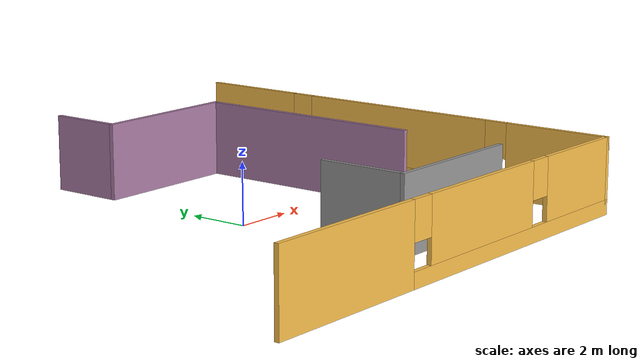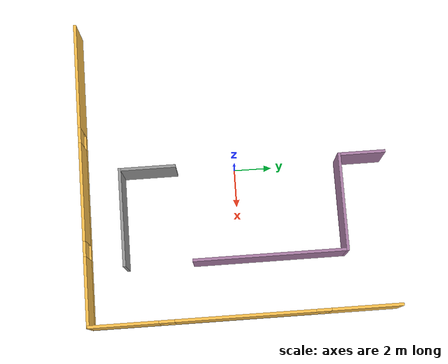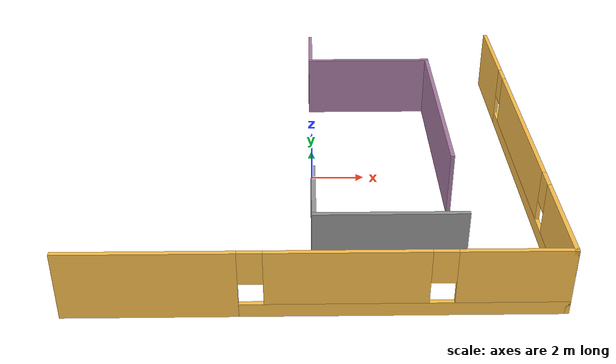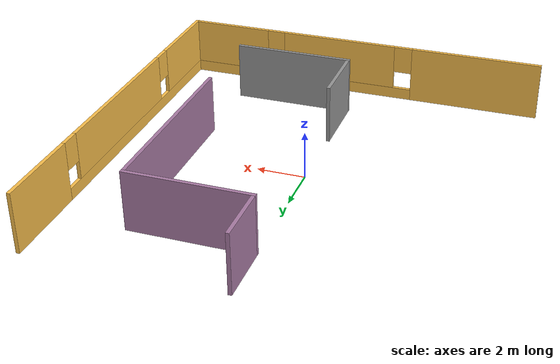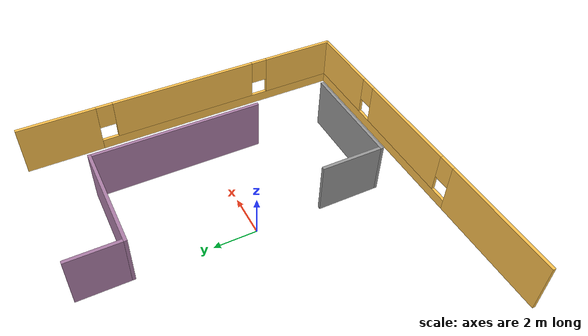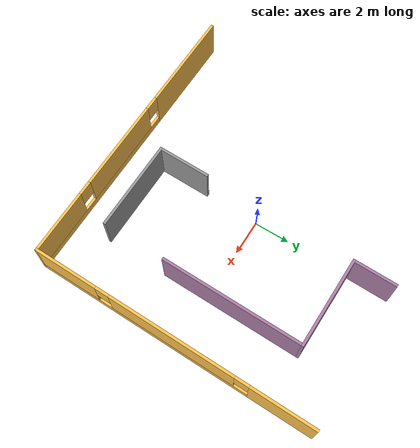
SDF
<sdf version="1.7">
 <model name="basic_office">
  <link name="Wall_11">
   <pose>8 0 0 0 0 -1.5708</pose>
   <visual name="Wall_11_Visual_3">
    <pose>6.2375 0 1.5 0 -0 0</pose>
    <geometry><box><size>3.675 0.15 2</size></box></geometry>
    <material>
     <script><uri>file://media/materials/scripts/gazebo.material</uri><name>Gazebo/Grey</name></script>
     <ambient>1 0.764706 0.305882 1</ambient>
     <shader type="pixel"/>
    </material>
    <meta><layer>0</layer></meta>
   </visual>
   <visual name="Wall_11_Visual_5">
    <pose>4 0 1.9 0 -0 0</pose>
    <geometry><box><size>0.8 0.15 1.2</size></box></geometry>
    <material>
     <script><uri>file://media/materials/scripts/gazebo.material</uri><name>Gazebo/Grey</name></script>
     <ambient>1 0.764706 0.305882 1</ambient>
     <shader type="pixel"/>
    </material>
    <meta><layer>0</layer></meta>
   </visual>
   <visual name="Wall_11_Visual_2">
    <pose>0 0 1.5 0 -0 0</pose>
    <geometry><box><size>7.2 0.15 2</size></box></geometry>
    <material>
     <script><uri>file://media/materials/scripts/gazebo.material</uri><name>Gazebo/Grey</name></script>
     <ambient>1 0.764706 0.305882 1</ambient>
     <shader type="pixel"/>
    </material>
    <meta><layer>0</layer></meta>
   </visual>
   <visual name="Wall_11_Visual_0">
    <pose>-6.2375 0 1.25 0 -0 0</pose>
    <geometry><box><size>3.675 0.15 2.5</size></box></geometry>
    <material>
     <script><uri>file://media/materials/scripts/gazebo.material</uri><name>Gazebo/Grey</name></script>
     <ambient>1 0.764706 0.305882 1</ambient>
     <shader type="pixel"/>
    </material>
    <meta><layer>0</layer></meta>
   </visual>
   <visual name="Wall_11_Visual_4">
    <pose>-4 0 1.9 0 -0 0</pose>
    <geometry><box><size>0.8 0.15 1.2</size></box></geometry>
    <material>
     <script><uri>file://media/materials/scripts/gazebo.material</uri><name>Gazebo/Grey</name></script>
     <ambient>1 0.764706 0.305882 1</ambient>
     <shader type="pixel"/>
    </material>
    <meta><layer>0</layer></meta>
   </visual>
   <visual name="Wall_11_Visual_1">
    <pose>1.8375 0 0.25 0 -0 0</pose>
    <geometry><box><size>12.475 0.15 0.5</size></box></geometry>
    <material>
     <script><uri>file://media/materials/scripts/gazebo.material</uri><name>Gazebo/Grey</name></script>
     <ambient>1 0.764706 0.305882 1</ambient>
     <shader type="pixel"/>
    </material>
    <meta><layer>0</layer></meta>
   </visual>
   <collision name="Wall_11_Collision_0">
    <pose>-6.2375 0 1.25 0 -0 0</pose>
    <geometry><box><size>3.675 0.15 2.5</size></box></geometry>
    <surface>
     <friction>
      <ode><mu>1</mu><mu2>1</mu2><fdir1>0 0 0</fdir1><slip1>0</slip1><slip2>0</slip2></ode>
      <torsional>
       <coefficient>1</coefficient>
       <patch_radius>0</patch_radius>
       <surface_radius>0</surface_radius>
       <use_patch_radius>1</use_patch_radius>
       <ode><slip>0</slip></ode>
      </torsional>
     </friction>
     <bounce><restitution_coefficient>0</restitution_coefficient><threshold>1e+06</threshold></bounce>
     <contact>
      <collide_without_contact>0</collide_without_contact>
      <collide_without_contact_bitmask>1</collide_without_contact_bitmask>
      <collide_bitmask>1</collide_bitmask>
      <ode>
       <soft_cfm>0</soft_cfm>
       <soft_erp>0.2</soft_erp>
       <kp>1e+13</kp>
       <kd>1</kd>
       <max_vel>0.01</max_vel>
       <min_depth>0</min_depth>
      </ode>
      <bullet>
       <split_impulse>1</split_impulse>
       <split_impulse_penetration_threshold>-0.01</split_impulse_penetration_threshold>
       <soft_cfm>0</soft_cfm>
       <soft_erp>0.2</soft_erp>
       <kp>1e+13</kp>
       <kd>1</kd>
      </bullet>
     </contact>
    </surface>
   </collision>
   <collision name="Wall_11_Collision_3">
    <pose>6.2375 0 1.5 0 -0 0</pose>
    <geometry><box><size>3.675 0.15 2</size></box></geometry>
    <surface>
     <friction>
      <ode><mu>1</mu><mu2>1</mu2><fdir1>0 0 0</fdir1><slip1>0</slip1><slip2>0</slip2></ode>
      <torsional>
       <coefficient>1</coefficient>
       <patch_radius>0</patch_radius>
       <surface_radius>0</surface_radius>
       <use_patch_radius>1</use_patch_radius>
       <ode><slip>0</slip></ode>
      </torsional>
     </friction>
     <bounce><restitution_coefficient>0</restitution_coefficient><threshold>1e+06</threshold></bounce>
     <contact>
      <collide_without_contact>0</collide_without_contact>
      <collide_without_contact_bitmask>1</collide_without_contact_bitmask>
      <collide_bitmask>1</collide_bitmask>
      <ode>
       <soft_cfm>0</soft_cfm>
       <soft_erp>0.2</soft_erp>
       <kp>1e+13</kp>
       <kd>1</kd>
       <max_vel>0.01</max_vel>
       <min_depth>0</min_depth>
      </ode>
      <bullet>
       <split_impulse>1</split_impulse>
       <split_impulse_penetration_threshold>-0.01</split_impulse_penetration_threshold>
       <soft_cfm>0</soft_cfm>
       <soft_erp>0.2</soft_erp>
       <kp>1e+13</kp>
       <kd>1</kd>
      </bullet>
     </contact>
    </surface>
   </collision>
   <collision name="Wall_11_Collision_5">
    <pose>4 0 1.9 0 -0 0</pose>
    <geometry><box><size>0.8 0.15 1.2</size></box></geometry>
    <surface>
     <friction>
      <ode><mu>1</mu><mu2>1</mu2><fdir1>0 0 0</fdir1><slip1>0</slip1><slip2>0</slip2></ode>
      <torsional>
       <coefficient>1</coefficient>
       <patch_radius>0</patch_radius>
       <surface_radius>0</surface_radius>
       <use_patch_radius>1</use_patch_radius>
       <ode><slip>0</slip></ode>
      </torsional>
     </friction>
     <bounce><restitution_coefficient>0</restitution_coefficient><threshold>1e+06</threshold></bounce>
     <contact>
      <collide_without_contact>0</collide_without_contact>
      <collide_without_contact_bitmask>1</collide_without_contact_bitmask>
      <collide_bitmask>1</collide_bitmask>
      <ode>
       <soft_cfm>0</soft_cfm>
       <soft_erp>0.2</soft_erp>
       <kp>1e+13</kp>
       <kd>1</kd>
       <max_vel>0.01</max_vel>
       <min_depth>0</min_depth>
      </ode>
      <bullet>
       <split_impulse>1</split_impulse>
       <split_impulse_penetration_threshold>-0.01</split_impulse_penetration_threshold>
       <soft_cfm>0</soft_cfm>
       <soft_erp>0.2</soft_erp>
       <kp>1e+13</kp>
       <kd>1</kd>
      </bullet>
     </contact>
    </surface>
   </collision>
   <collision name="Wall_11_Collision_1">
    <pose>1.8375 0 0.25 0 -0 0</pose>
    <geometry><box><size>12.475 0.15 0.5</size></box></geometry>
    <surface>
     <friction>
      <ode><mu>1</mu><mu2>1</mu2><fdir1>0 0 0</fdir1><slip1>0</slip1><slip2>0</slip2></ode>
      <torsional>
       <coefficient>1</coefficient>
       <patch_radius>0</patch_radius>
       <surface_radius>0</surface_radius>
       <use_patch_radius>1</use_patch_radius>
       <ode><slip>0</slip></ode>
      </torsional>
     </friction>
     <bounce><restitution_coefficient>0</restitution_coefficient><threshold>1e+06</threshold></bounce>
     <contact>
      <collide_without_contact>0</collide_without_contact>
      <collide_without_contact_bitmask>1</collide_without_contact_bitmask>
      <collide_bitmask>1</collide_bitmask>
      <ode>
       <soft_cfm>0</soft_cfm>
       <soft_erp>0.2</soft_erp>
       <kp>1e+13</kp>
       <kd>1</kd>
       <max_vel>0.01</max_vel>
       <min_depth>0</min_depth>
      </ode>
      <bullet>
       <split_impulse>1</split_impulse>
       <split_impulse_penetration_threshold>-0.01</split_impulse_penetration_threshold>
       <soft_cfm>0</soft_cfm>
       <soft_erp>0.2</soft_erp>
       <kp>1e+13</kp>
       <kd>1</kd>
      </bullet>
     </contact>
    </surface>
   </collision>
   <collision name="Wall_11_Collision_4">
    <pose>-4 0 1.9 0 -0 0</pose>
    <geometry><box><size>0.8 0.15 1.2</size></box></geometry>
    <surface>
     <friction>
      <ode><mu>1</mu><mu2>1</mu2><fdir1>0 0 0</fdir1><slip1>0</slip1><slip2>0</slip2></ode>
      <torsional>
       <coefficient>1</coefficient>
       <patch_radius>0</patch_radius>
       <surface_radius>0</surface_radius>
       <use_patch_radius>1</use_patch_radius>
       <ode><slip>0</slip></ode>
      </torsional>
     </friction>
     <bounce><restitution_coefficient>0</restitution_coefficient><threshold>1e+06</threshold></bounce>
     <contact>
      <collide_without_contact>0</collide_without_contact>
      <collide_without_contact_bitmask>1</collide_without_contact_bitmask>
      <collide_bitmask>1</collide_bitmask>
      <ode>
       <soft_cfm>0</soft_cfm>
       <soft_erp>0.2</soft_erp>
       <kp>1e+13</kp>
       <kd>1</kd>
       <max_vel>0.01</max_vel>
       <min_depth>0</min_depth>
      </ode>
      <bullet>
       <split_impulse>1</split_impulse>
       <split_impulse_penetration_threshold>-0.01</split_impulse_penetration_threshold>
       <soft_cfm>0</soft_cfm>
       <soft_erp>0.2</soft_erp>
       <kp>1e+13</kp>
       <kd>1</kd>
      </bullet>
     </contact>
    </surface>
   </collision>
   <collision name="Wall_11_Collision_2">
    <pose>0 0 1.5 0 -0 0</pose>
    <geometry><box><size>7.2 0.15 2</size></box></geometry>
    <surface>
     <friction>
      <ode><mu>1</mu><mu2>1</mu2><fdir1>0 0 0</fdir1><slip1>0</slip1><slip2>0</slip2></ode>
      <torsional>
       <coefficient>1</coefficient>
       <patch_radius>0</patch_radius>
       <surface_radius>0</surface_radius>
       <use_patch_radius>1</use_patch_radius>
       <ode><slip>0</slip></ode>
      </torsional>
     </friction>
     <bounce><restitution_coefficient>0</restitution_coefficient><threshold>1e+06</threshold></bounce>
     <contact>
      <collide_without_contact>0</collide_without_contact>
      <collide_without_contact_bitmask>1</collide_without_contact_bitmask>
      <collide_bitmask>1</collide_bitmask>
      <ode>
       <soft_cfm>0</soft_cfm>
       <soft_erp>0.2</soft_erp>
       <kp>1e+13</kp>
       <kd>1</kd>
       <max_vel>0.01</max_vel>
       <min_depth>0</min_depth>
      </ode>
      <bullet>
       <split_impulse>1</split_impulse>
       <split_impulse_penetration_threshold>-0.01</split_impulse_penetration_threshold>
       <soft_cfm>0</soft_cfm>
       <soft_erp>0.2</soft_erp>
       <kp>1e+13</kp>
       <kd>1</kd>
      </bullet>
     </contact>
    </surface>
   </collision>
  </link>
  <link name="Wall_20">
   <pose>0 -8 0 0 -0 0</pose>
   <visual name="Wall_20_Visual_0">
    <pose>-5.2375 0 1.25 0 -0 0</pose>
    <geometry><box><size>5.675 0.15 2.5</size></box></geometry>
    <material>
     <script><uri>file://media/materials/scripts/gazebo.material</uri><name>Gazebo/Grey</name></script>
     <ambient>1 0.764706 0.305882 1</ambient>
     <shader type="pixel"/>
    </material>
    <meta><layer>0</layer></meta>
   </visual>
   <visual name="Wall_20_Visual_2">
    <pose>1.00413 0 1.5 0 -0 0</pose>
    <geometry><box><size>5.20827 0.15 2</size></box></geometry>
    <material>
     <script><uri>file://media/materials/scripts/gazebo.material</uri><name>Gazebo/Grey</name></script>
     <ambient>1 0.764706 0.305882 1</ambient>
     <shader type="pixel"/>
    </material>
    <meta><layer>0</layer></meta>
   </visual>
   <visual name="Wall_20_Visual_1">
    <pose>2.8375 0 0.25 0 -0 0</pose>
    <geometry><box><size>10.475 0.15 0.5</size></box></geometry>
    <material>
     <script><uri>file://media/materials/scripts/gazebo.material</uri><name>Gazebo/Grey</name></script>
     <ambient>1 0.764706 0.305882 1</ambient>
     <shader type="pixel"/>
    </material>
    <meta><layer>0</layer></meta>
   </visual>
   <visual name="Wall_20_Visual_4">
    <pose>-2 0 1.9 0 -0 0</pose>
    <geometry><box><size>0.8 0.15 1.2</size></box></geometry>
    <material>
     <script><uri>file://media/materials/scripts/gazebo.material</uri><name>Gazebo/Grey</name></script>
     <ambient>1 0.764706 0.305882 1</ambient>
     <shader type="pixel"/>
    </material>
    <meta><layer>0</layer></meta>
   </visual>
   <visual name="Wall_20_Visual_3">
    <pose>6.24163 0 1.5 0 -0 0</pose>
    <geometry><box><size>3.66673 0.15 2</size></box></geometry>
    <material>
     <script><uri>file://media/materials/scripts/gazebo.material</uri><name>Gazebo/Grey</name></script>
     <ambient>1 0.764706 0.305882 1</ambient>
     <shader type="pixel"/>
    </material>
    <meta><layer>0</layer></meta>
   </visual>
   <visual name="Wall_20_Visual_5">
    <pose>4.00827 0 1.9 0 -0 0</pose>
    <geometry><box><size>0.8 0.15 1.2</size></box></geometry>
    <material>
     <script><uri>file://media/materials/scripts/gazebo.material</uri><name>Gazebo/Grey</name></script>
     <ambient>1 0.764706 0.305882 1</ambient>
     <shader type="pixel"/>
    </material>
    <meta><layer>0</layer></meta>
   </visual>
   <collision name="Wall_20_Collision_3">
    <pose>6.24163 0 1.5 0 -0 0</pose>
    <geometry><box><size>3.66673 0.15 2</size></box></geometry>
    <surface>
     <friction>
      <ode><mu>1</mu><mu2>1</mu2><fdir1>0 0 0</fdir1><slip1>0</slip1><slip2>0</slip2></ode>
      <torsional>
       <coefficient>1</coefficient>
       <patch_radius>0</patch_radius>
       <surface_radius>0</surface_radius>
       <use_patch_radius>1</use_patch_radius>
       <ode><slip>0</slip></ode>
      </torsional>
     </friction>
     <bounce><restitution_coefficient>0</restitution_coefficient><threshold>1e+06</threshold></bounce>
     <contact>
      <collide_without_contact>0</collide_without_contact>
      <collide_without_contact_bitmask>1</collide_without_contact_bitmask>
      <collide_bitmask>1</collide_bitmask>
      <ode>
       <soft_cfm>0</soft_cfm>
       <soft_erp>0.2</soft_erp>
       <kp>1e+13</kp>
       <kd>1</kd>
       <max_vel>0.01</max_vel>
       <min_depth>0</min_depth>
      </ode>
      <bullet>
       <split_impulse>1</split_impulse>
       <split_impulse_penetration_threshold>-0.01</split_impulse_penetration_threshold>
       <soft_cfm>0</soft_cfm>
       <soft_erp>0.2</soft_erp>
       <kp>1e+13</kp>
       <kd>1</kd>
      </bullet>
     </contact>
    </surface>
   </collision>
   <collision name="Wall_20_Collision_4">
    <pose>-2 0 1.9 0 -0 0</pose>
    <geometry><box><size>0.8 0.15 1.2</size></box></geometry>
    <surface>
     <friction>
      <ode><mu>1</mu><mu2>1</mu2><fdir1>0 0 0</fdir1><slip1>0</slip1><slip2>0</slip2></ode>
      <torsional>
       <coefficient>1</coefficient>
       <patch_radius>0</patch_radius>
       <surface_radius>0</surface_radius>
       <use_patch_radius>1</use_patch_radius>
       <ode><slip>0</slip></ode>
      </torsional>
     </friction>
     <bounce><restitution_coefficient>0</restitution_coefficient><threshold>1e+06</threshold></bounce>
     <contact>
      <collide_without_contact>0</collide_without_contact>
      <collide_without_contact_bitmask>1</collide_without_contact_bitmask>
      <collide_bitmask>1</collide_bitmask>
      <ode>
       <soft_cfm>0</soft_cfm>
       <soft_erp>0.2</soft_erp>
       <kp>1e+13</kp>
       <kd>1</kd>
       <max_vel>0.01</max_vel>
       <min_depth>0</min_depth>
      </ode>
      <bullet>
       <split_impulse>1</split_impulse>
       <split_impulse_penetration_threshold>-0.01</split_impulse_penetration_threshold>
       <soft_cfm>0</soft_cfm>
       <soft_erp>0.2</soft_erp>
       <kp>1e+13</kp>
       <kd>1</kd>
      </bullet>
     </contact>
    </surface>
   </collision>
   <collision name="Wall_20_Collision_5">
    <pose>4.00827 0 1.9 0 -0 0</pose>
    <geometry><box><size>0.8 0.15 1.2</size></box></geometry>
    <surface>
     <friction>
      <ode><mu>1</mu><mu2>1</mu2><fdir1>0 0 0</fdir1><slip1>0</slip1><slip2>0</slip2></ode>
      <torsional>
       <coefficient>1</coefficient>
       <patch_radius>0</patch_radius>
       <surface_radius>0</surface_radius>
       <use_patch_radius>1</use_patch_radius>
       <ode><slip>0</slip></ode>
      </torsional>
     </friction>
     <bounce><restitution_coefficient>0</restitution_coefficient><threshold>1e+06</threshold></bounce>
     <contact>
      <collide_without_contact>0</collide_without_contact>
      <collide_without_contact_bitmask>1</collide_without_contact_bitmask>
      <collide_bitmask>1</collide_bitmask>
      <ode>
       <soft_cfm>0</soft_cfm>
       <soft_erp>0.2</soft_erp>
       <kp>1e+13</kp>
       <kd>1</kd>
       <max_vel>0.01</max_vel>
       <min_depth>0</min_depth>
      </ode>
      <bullet>
       <split_impulse>1</split_impulse>
       <split_impulse_penetration_threshold>-0.01</split_impulse_penetration_threshold>
       <soft_cfm>0</soft_cfm>
       <soft_erp>0.2</soft_erp>
       <kp>1e+13</kp>
       <kd>1</kd>
      </bullet>
     </contact>
    </surface>
   </collision>
   <collision name="Wall_20_Collision_2">
    <pose>1.00413 0 1.5 0 -0 0</pose>
    <geometry><box><size>5.20827 0.15 2</size></box></geometry>
    <surface>
     <friction>
      <ode><mu>1</mu><mu2>1</mu2><fdir1>0 0 0</fdir1><slip1>0</slip1><slip2>0</slip2></ode>
      <torsional>
       <coefficient>1</coefficient>
       <patch_radius>0</patch_radius>
       <surface_radius>0</surface_radius>
       <use_patch_radius>1</use_patch_radius>
       <ode><slip>0</slip></ode>
      </torsional>
     </friction>
     <bounce><restitution_coefficient>0</restitution_coefficient><threshold>1e+06</threshold></bounce>
     <contact>
      <collide_without_contact>0</collide_without_contact>
      <collide_without_contact_bitmask>1</collide_without_contact_bitmask>
      <collide_bitmask>1</collide_bitmask>
      <ode>
       <soft_cfm>0</soft_cfm>
       <soft_erp>0.2</soft_erp>
       <kp>1e+13</kp>
       <kd>1</kd>
       <max_vel>0.01</max_vel>
       <min_depth>0</min_depth>
      </ode>
      <bullet>
       <split_impulse>1</split_impulse>
       <split_impulse_penetration_threshold>-0.01</split_impulse_penetration_threshold>
       <soft_cfm>0</soft_cfm>
       <soft_erp>0.2</soft_erp>
       <kp>1e+13</kp>
       <kd>1</kd>
      </bullet>
     </contact>
    </surface>
   </collision>
   <collision name="Wall_20_Collision_1">
    <pose>2.8375 0 0.25 0 -0 0</pose>
    <geometry><box><size>10.475 0.15 0.5</size></box></geometry>
    <surface>
     <friction>
      <ode><mu>1</mu><mu2>1</mu2><fdir1>0 0 0</fdir1><slip1>0</slip1><slip2>0</slip2></ode>
      <torsional>
       <coefficient>1</coefficient>
       <patch_radius>0</patch_radius>
       <surface_radius>0</surface_radius>
       <use_patch_radius>1</use_patch_radius>
       <ode><slip>0</slip></ode>
      </torsional>
     </friction>
     <bounce><restitution_coefficient>0</restitution_coefficient><threshold>1e+06</threshold></bounce>
     <contact>
      <collide_without_contact>0</collide_without_contact>
      <collide_without_contact_bitmask>1</collide_without_contact_bitmask>
      <collide_bitmask>1</collide_bitmask>
      <ode>
       <soft_cfm>0</soft_cfm>
       <soft_erp>0.2</soft_erp>
       <kp>1e+13</kp>
       <kd>1</kd>
       <max_vel>0.01</max_vel>
       <min_depth>0</min_depth>
      </ode>
      <bullet>
       <split_impulse>1</split_impulse>
       <split_impulse_penetration_threshold>-0.01</split_impulse_penetration_threshold>
       <soft_cfm>0</soft_cfm>
       <soft_erp>0.2</soft_erp>
       <kp>1e+13</kp>
       <kd>1</kd>
      </bullet>
     </contact>
    </surface>
   </collision>
   <collision name="Wall_20_Collision_0">
    <pose>-5.2375 0 1.25 0 -0 0</pose>
    <geometry><box><size>5.675 0.15 2.5</size></box></geometry>
    <surface>
     <friction>
      <ode><mu>1</mu><mu2>1</mu2><fdir1>0 0 0</fdir1><slip1>0</slip1><slip2>0</slip2></ode>
      <torsional>
       <coefficient>1</coefficient>
       <patch_radius>0</patch_radius>
       <surface_radius>0</surface_radius>
       <use_patch_radius>1</use_patch_radius>
       <ode><slip>0</slip></ode>
      </torsional>
     </friction>
     <bounce><restitution_coefficient>0</restitution_coefficient><threshold>1e+06</threshold></bounce>
     <contact>
      <collide_without_contact>0</collide_without_contact>
      <collide_without_contact_bitmask>1</collide_without_contact_bitmask>
      <collide_bitmask>1</collide_bitmask>
      <ode>
       <soft_cfm>0</soft_cfm>
       <soft_erp>0.2</soft_erp>
       <kp>1e+13</kp>
       <kd>1</kd>
       <max_vel>0.01</max_vel>
       <min_depth>0</min_depth>
      </ode>
      <bullet>
       <split_impulse>1</split_impulse>
       <split_impulse_penetration_threshold>-0.01</split_impulse_penetration_threshold>
       <soft_cfm>0</soft_cfm>
       <soft_erp>0.2</soft_erp>
       <kp>1e+13</kp>
       <kd>1</kd>
      </bullet>
     </contact>
    </surface>
   </collision>
  </link>
  <link name="Wall_25">
   <pose>5 1.461 0 0 0 -1.5708</pose>
   <inertial>
    <mass>1</mass>
    <inertia><ixx>1</ixx><ixy>0</ixy><ixz>0</ixz><iyy>1</iyy><iyz>0</iyz><izz>1</izz></inertia>
   </inertial>
   <visual name="Wall_25_Visual">
    <pose>0 0 1.25 0 -0 0</pose>
    <geometry><box><size>7.9275 0.15 2.5</size></box></geometry>
    <material>
     <script><uri>file://media/materials/scripts/gazebo.material</uri><name>Gazebo/Grey</name></script>
     <ambient>0.678 0.498 0.659 1</ambient>
     <shader type="pixel"><normal_map>__default__</normal_map></shader>
     <diffuse>0.7 0.7 0.7 1</diffuse>
     <specular>0.01 0.01 0.01 1</specular>
     <emissive>0 0 0 1</emissive>
    </material>
    <meta><layer>0</layer></meta>
   </visual>
   <collision name="Wall_25_Collision">
    <pose>0 0 1.25 0 -0 0</pose>
    <geometry><box><size>7.9275 0.15 2.5</size></box></geometry>
    <surface>
     <friction>
      <ode><mu>1</mu><mu2>1</mu2><fdir1>0 0 0</fdir1><slip1>0</slip1><slip2>0</slip2></ode>
      <torsional>
       <coefficient>1</coefficient>
       <patch_radius>0</patch_radius>
       <surface_radius>0</surface_radius>
       <use_patch_radius>1</use_patch_radius>
       <ode><slip>0</slip></ode>
      </torsional>
     </friction>
     <bounce><restitution_coefficient>0</restitution_coefficient><threshold>1e+06</threshold></bounce>
     <contact>
      <collide_without_contact>0</collide_without_contact>
      <collide_without_contact_bitmask>1</collide_without_contact_bitmask>
      <collide_bitmask>1</collide_bitmask>
      <ode>
       <soft_cfm>0</soft_cfm>
       <soft_erp>0.2</soft_erp>
       <kp>1e+13</kp>
       <kd>1</kd>
       <max_vel>0.01</max_vel>
       <min_depth>0</min_depth>
      </ode>
      <bullet>
       <split_impulse>1</split_impulse>
       <split_impulse_penetration_threshold>-0.01</split_impulse_penetration_threshold>
       <soft_cfm>0</soft_cfm>
       <soft_erp>0.2</soft_erp>
       <kp>1e+13</kp>
       <kd>1</kd>
      </bullet>
     </contact>
    </surface>
   </collision>
  </link>
  <link name="Wall_27">
   <pose>0 -4.5 0 0 0 -1.5708</pose>
   <inertial>
    <mass>1</mass>
    <inertia><ixx>1</ixx><ixy>0</ixy><ixz>0</ixz><iyy>1</iyy><iyz>0</iyz><izz>1</izz></inertia>
   </inertial>
   <visual name="Wall_27_Visual">
    <pose>0 0 1.25 0 -0 0</pose>
    <geometry><box><size>2.85 0.15 2.5</size></box></geometry>
    <material>
     <script><uri>file://media/materials/scripts/gazebo.material</uri><name>Gazebo/Grey</name></script>
     <ambient>0.18 0.204 0.212 1</ambient>
     <shader type="pixel"><normal_map>__default__</normal_map></shader>
     <diffuse>0.7 0.7 0.7 1</diffuse>
     <specular>0.01 0.01 0.01 1</specular>
     <emissive>0 0 0 1</emissive>
    </material>
    <meta><layer>0</layer></meta>
   </visual>
   <collision name="Wall_27_Collision">
    <pose>0 0 1.25 0 -0 0</pose>
    <geometry><box><size>2.85 0.15 2.5</size></box></geometry>
    <surface>
     <friction>
      <ode><mu>1</mu><mu2>1</mu2><fdir1>0 0 0</fdir1><slip1>0</slip1><slip2>0</slip2></ode>
      <torsional>
       <coefficient>1</coefficient>
       <patch_radius>0</patch_radius>
       <surface_radius>0</surface_radius>
       <use_patch_radius>1</use_patch_radius>
       <ode><slip>0</slip></ode>
      </torsional>
     </friction>
     <bounce><restitution_coefficient>0</restitution_coefficient><threshold>1e+06</threshold></bounce>
     <contact>
      <collide_without_contact>0</collide_without_contact>
      <collide_without_contact_bitmask>1</collide_without_contact_bitmask>
      <collide_bitmask>1</collide_bitmask>
      <ode>
       <soft_cfm>0</soft_cfm>
       <soft_erp>0.2</soft_erp>
       <kp>1e+13</kp>
       <kd>1</kd>
       <max_vel>0.01</max_vel>
       <min_depth>0</min_depth>
      </ode>
      <bullet>
       <split_impulse>1</split_impulse>
       <split_impulse_penetration_threshold>-0.01</split_impulse_penetration_threshold>
       <soft_cfm>0</soft_cfm>
       <soft_erp>0.2</soft_erp>
       <kp>1e+13</kp>
       <kd>1</kd>
      </bullet>
     </contact>
    </surface>
   </collision>
  </link>
  <link name="Wall_36">
   <pose>2.5 -6 0 0 -0 0</pose>
   <visual name="Wall_36_Visual">
    <pose>0 0 1.25 0 -0 0</pose>
    <geometry><box><size>5.15 0.15 2.5</size></box></geometry>
    <material>
     <script><uri>file://media/materials/scripts/gazebo.material</uri><name>Gazebo/Grey</name></script>
     <ambient>0.180392 0.203922 0.211765 1</ambient>
     <shader type="pixel"/>
    </material>
    <meta><layer>0</layer></meta>
   </visual>
   <collision name="Wall_36_Collision">
    <pose>0 0 1.25 0 -0 0</pose>
    <geometry><box><size>5.15 0.15 2.5</size></box></geometry>
    <surface>
     <friction>
      <ode><mu>1</mu><mu2>1</mu2><fdir1>0 0 0</fdir1><slip1>0</slip1><slip2>0</slip2></ode>
      <torsional>
       <coefficient>1</coefficient>
       <patch_radius>0</patch_radius>
       <surface_radius>0</surface_radius>
       <use_patch_radius>1</use_patch_radius>
       <ode><slip>0</slip></ode>
      </torsional>
     </friction>
     <bounce><restitution_coefficient>0</restitution_coefficient><threshold>1e+06</threshold></bounce>
     <contact>
      <collide_without_contact>0</collide_without_contact>
      <collide_without_contact_bitmask>1</collide_without_contact_bitmask>
      <collide_bitmask>1</collide_bitmask>
      <ode>
       <soft_cfm>0</soft_cfm>
       <soft_erp>0.2</soft_erp>
       <kp>1e+13</kp>
       <kd>1</kd>
       <max_vel>0.01</max_vel>
       <min_depth>0</min_depth>
      </ode>
      <bullet>
       <split_impulse>1</split_impulse>
       <split_impulse_penetration_threshold>-0.01</split_impulse_penetration_threshold>
       <soft_cfm>0</soft_cfm>
       <soft_erp>0.2</soft_erp>
       <kp>1e+13</kp>
       <kd>1</kd>
      </bullet>
     </contact>
    </surface>
   </collision>
  </link>
  <link name="Wall_40">
   <pose>2.5 5.5 0 0 -0 3.14159</pose>
   <visual name="Wall_40_Visual">
    <pose>0 0 1.25 0 -0 0</pose>
    <geometry><box><size>5.15 0.15 2.5</size></box></geometry>
    <material>
     <script><uri>file://media/materials/scripts/gazebo.material</uri><name>Gazebo/Grey</name></script>
     <ambient>0.678431 0.498039 0.658824 1</ambient>
     <shader type="pixel"/>
    </material>
    <meta><layer>0</layer></meta>
   </visual>
   <collision name="Wall_40_Collision">
    <pose>0 0 1.25 0 -0 0</pose>
    <geometry><box><size>5.15 0.15 2.5</size></box></geometry>
    <surface>
     <friction>
      <ode><mu>1</mu><mu2>1</mu2><fdir1>0 0 0</fdir1><slip1>0</slip1><slip2>0</slip2></ode>
      <torsional>
       <coefficient>1</coefficient>
       <patch_radius>0</patch_radius>
       <surface_radius>0</surface_radius>
       <use_patch_radius>1</use_patch_radius>
       <ode><slip>0</slip></ode>
      </torsional>
     </friction>
     <bounce><restitution_coefficient>0</restitution_coefficient><threshold>1e+06</threshold></bounce>
     <contact>
      <collide_without_contact>0</collide_without_contact>
      <collide_without_contact_bitmask>1</collide_without_contact_bitmask>
      <collide_bitmask>1</collide_bitmask>
      <ode>
       <soft_cfm>0</soft_cfm>
       <soft_erp>0.2</soft_erp>
       <kp>1e+13</kp>
       <kd>1</kd>
       <max_vel>0.01</max_vel>
       <min_depth>0</min_depth>
      </ode>
      <bullet>
       <split_impulse>1</split_impulse>
       <split_impulse_penetration_threshold>-0.01</split_impulse_penetration_threshold>
       <soft_cfm>0</soft_cfm>
       <soft_erp>0.2</soft_erp>
       <kp>1e+13</kp>
       <kd>1</kd>
      </bullet>
     </contact>
    </surface>
   </collision>
  </link>
  <link name="Wall_42">
   <pose>0 6.75 0 0 0 -1.5708</pose>
   <inertial>
    <mass>1</mass>
    <inertia><ixx>1</ixx><ixy>0</ixy><ixz>0</ixz><iyy>1</iyy><iyz>0</iyz><izz>1</izz></inertia>
   </inertial>
   <visual name="Wall_42_Visual">
    <pose>0 0 1.25 0 -0 0</pose>
    <geometry><box><size>2.35 0.15 2.5</size></box></geometry>
    <material>
     <script><uri>file://media/materials/scripts/gazebo.material</uri><name>Gazebo/Grey</name></script>
     <ambient>0.678 0.498 0.659 1</ambient>
     <shader type="pixel"><normal_map>__default__</normal_map></shader>
     <diffuse>0.7 0.7 0.7 1</diffuse>
     <specular>0.01 0.01 0.01 1</specular>
     <emissive>0 0 0 1</emissive>
    </material>
    <meta><layer>0</layer></meta>
   </visual>
   <collision name="Wall_42_Collision">
    <pose>0 0 1.25 0 -0 0</pose>
    <geometry><box><size>2.35 0.15 2.5</size></box></geometry>
    <surface>
     <friction>
      <ode><mu>1</mu><mu2>1</mu2><fdir1>0 0 0</fdir1><slip1>0</slip1><slip2>0</slip2></ode>
      <torsional>
       <coefficient>1</coefficient>
       <patch_radius>0</patch_radius>
       <surface_radius>0</surface_radius>
       <use_patch_radius>1</use_patch_radius>
       <ode><slip>0</slip></ode>
      </torsional>
     </friction>
     <bounce><restitution_coefficient>0</restitution_coefficient><threshold>1e+06</threshold></bounce>
     <contact>
      <collide_without_contact>0</collide_without_contact>
      <collide_without_contact_bitmask>1</collide_without_contact_bitmask>
      <collide_bitmask>1</collide_bitmask>
      <ode>
       <soft_cfm>0</soft_cfm>
       <soft_erp>0.2</soft_erp>
       <kp>1e+13</kp>
       <kd>1</kd>
       <max_vel>0.01</max_vel>
       <min_depth>0</min_depth>
      </ode>
      <bullet>
       <split_impulse>1</split_impulse>
       <split_impulse_penetration_threshold>-0.01</split_impulse_penetration_threshold>
       <soft_cfm>0</soft_cfm>
       <soft_erp>0.2</soft_erp>
       <kp>1e+13</kp>
       <kd>1</kd>
      </bullet>
     </contact>
    </surface>
   </collision>
  </link>
  <static>1</static>
 </model>
</sdf>
